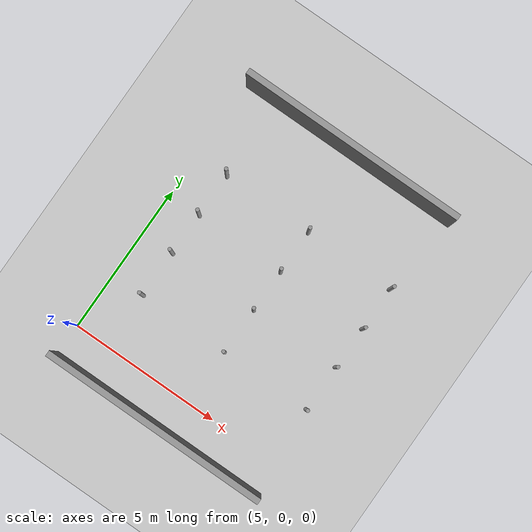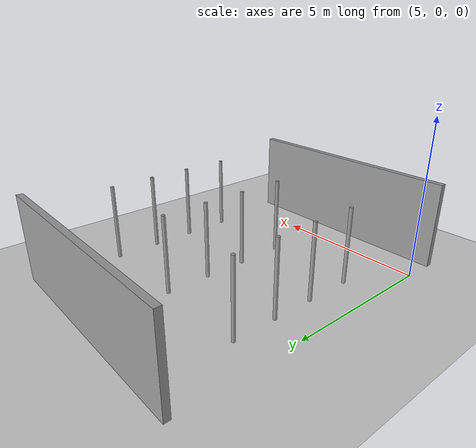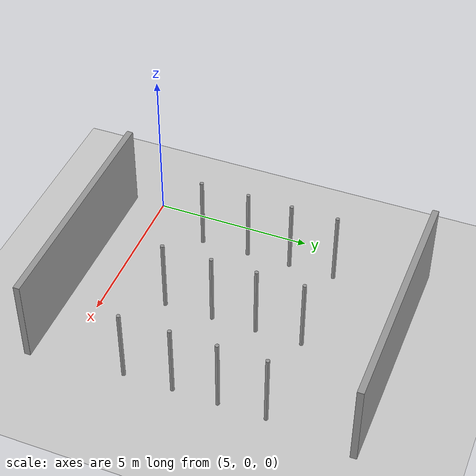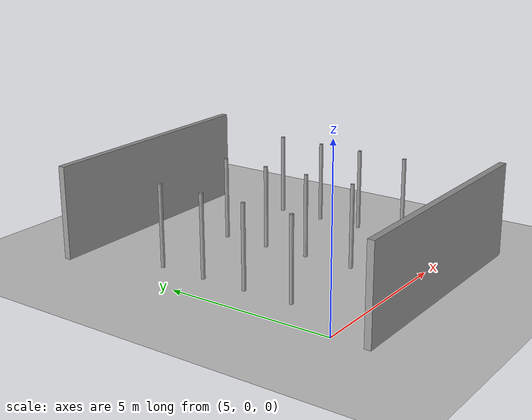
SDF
<sdf version="1.6">
 <world name="default">
  <model name="ground_plane">
   <static>1</static>
   <link name="link">
    <collision name="collision">
     <geometry><plane><normal>0 0 1</normal><size>100 100</size></plane></geometry>
     <surface><friction><ode><mu>100</mu><mu2>50</mu2></ode></friction></surface>
    </collision>
    <visual name="visual">
     <cast_shadows>0</cast_shadows>
     <geometry><plane><normal>0 0 1</normal><size>100 100</size></plane></geometry>
     <material>
      <script><uri>file://media/materials/scripts/gazebo.material</uri><name>Gazebo/Grey</name></script>
     </material>
    </visual>
   </link>
  </model>
  <model name="pole">
   <link name="link_0">
    <inertial>
     <mass>0.0364582</mass>
     <inertia>
      <ixx>0.00312124</ixx>
      <ixy>0</ixy>
      <ixz>0</ixz>
      <iyy>0.00312124</iyy>
      <iyz>0</iyz>
      <izz>0.00016615</izz>
     </inertia>
    </inertial>
    <visual name="visual">
     <geometry><cylinder><radius>0.06</radius><length>2.5</length></cylinder></geometry>
     <material>
      <lighting>1</lighting>
      <script><uri>file://media/materials/scripts/gazebo.material</uri><name>Gazebo/Grey</name></script>
      <ambient>0.3 0.3 0.3 1</ambient>
      <diffuse>0.7 0.7 0.7 1</diffuse>
      <specular>0.01 0.01 0.01 1</specular>
      <emissive>0 0 0 1</emissive>
      <shader type="vertex"><normal_map>__default__</normal_map></shader>
     </material>
    </visual>
    <collision name="collision">
     <geometry><cylinder><radius>0.06</radius><length>2.5</length></cylinder></geometry>
     <surface>
      <friction>
       <ode><mu>1</mu><mu2>1</mu2><fdir1>0 0 0</fdir1><slip1>0</slip1><slip2>0</slip2></ode>
       <torsional>
        <coefficient>1</coefficient>
        <patch_radius>0</patch_radius>
        <surface_radius>0</surface_radius>
        <use_patch_radius>1</use_patch_radius>
        <ode><slip>0</slip></ode>
       </torsional>
      </friction>
      <bounce><restitution_coefficient>0</restitution_coefficient><threshold>1e+06</threshold></bounce>
      <contact>
       <collide_without_contact>0</collide_without_contact>
       <collide_without_contact_bitmask>1</collide_without_contact_bitmask>
       <collide_bitmask>1</collide_bitmask>
       <ode>
        <soft_cfm>0</soft_cfm>
        <soft_erp>0.2</soft_erp>
        <kp>1e+13</kp>
        <kd>1</kd>
        <max_vel>0.01</max_vel>
        <min_depth>0</min_depth>
       </ode>
       <bullet>
        <split_impulse>1</split_impulse>
        <split_impulse_penetration_threshold>-0.01</split_impulse_penetration_threshold>
        <soft_cfm>0</soft_cfm>
        <soft_erp>0.2</soft_erp>
        <kp>1e+13</kp>
        <kd>1</kd>
       </bullet>
      </contact>
     </surface>
    </collision>
   </link>
   <static>0</static>
   <pose>6.10668 1.89955 1.24999 -1e-06 1e-06 -0.061907</pose>
  </model>
  <model name="pole_0">
   <link name="link_0">
    <inertial>
     <mass>0.0364582</mass>
     <inertia>
      <ixx>0.00312124</ixx>
      <ixy>0</ixy>
      <ixz>0</ixz>
      <iyy>0.00312124</iyy>
      <iyz>0</iyz>
      <izz>0.00016615</izz>
     </inertia>
    </inertial>
    <visual name="visual">
     <geometry><cylinder><radius>0.06</radius><length>2.5</length></cylinder></geometry>
     <material>
      <lighting>1</lighting>
      <script><uri>file://media/materials/scripts/gazebo.material</uri><name>Gazebo/Grey</name></script>
      <ambient>0.3 0.3 0.3 1</ambient>
      <diffuse>0.7 0.7 0.7 1</diffuse>
      <specular>0.01 0.01 0.01 1</specular>
      <emissive>0 0 0 1</emissive>
      <shader type="vertex"><normal_map>__default__</normal_map></shader>
     </material>
    </visual>
    <collision name="collision">
     <geometry><cylinder><radius>0.06</radius><length>2.5</length></cylinder></geometry>
     <surface>
      <friction>
       <ode><mu>1</mu><mu2>1</mu2><fdir1>0 0 0</fdir1><slip1>0</slip1><slip2>0</slip2></ode>
       <torsional>
        <coefficient>1</coefficient>
        <patch_radius>0</patch_radius>
        <surface_radius>0</surface_radius>
        <use_patch_radius>1</use_patch_radius>
        <ode><slip>0</slip></ode>
       </torsional>
      </friction>
      <bounce><restitution_coefficient>0</restitution_coefficient><threshold>1e+06</threshold></bounce>
      <contact>
       <collide_without_contact>0</collide_without_contact>
       <collide_without_contact_bitmask>1</collide_without_contact_bitmask>
       <collide_bitmask>1</collide_bitmask>
       <ode>
        <soft_cfm>0</soft_cfm>
        <soft_erp>0.2</soft_erp>
        <kp>1e+13</kp>
        <kd>1</kd>
        <max_vel>0.01</max_vel>
        <min_depth>0</min_depth>
       </ode>
       <bullet>
        <split_impulse>1</split_impulse>
        <split_impulse_penetration_threshold>-0.01</split_impulse_penetration_threshold>
        <soft_cfm>0</soft_cfm>
        <soft_erp>0.2</soft_erp>
        <kp>1e+13</kp>
        <kd>1</kd>
       </bullet>
      </contact>
     </surface>
    </collision>
   </link>
   <static>0</static>
   <pose>6.10668 3.44552 1.24999 -0 -0 -0.031335</pose>
  </model>
  <model name="pole_1">
   <link name="link_0">
    <inertial>
     <mass>0.0364582</mass>
     <inertia>
      <ixx>0.00312124</ixx>
      <ixy>0</ixy>
      <ixz>0</ixz>
      <iyy>0.00312124</iyy>
      <iyz>0</iyz>
      <izz>0.00016615</izz>
     </inertia>
    </inertial>
    <visual name="visual">
     <geometry><cylinder><radius>0.06</radius><length>2.5</length></cylinder></geometry>
     <material>
      <lighting>1</lighting>
      <script><uri>file://media/materials/scripts/gazebo.material</uri><name>Gazebo/Grey</name></script>
      <ambient>0.3 0.3 0.3 1</ambient>
      <diffuse>0.7 0.7 0.7 1</diffuse>
      <specular>0.01 0.01 0.01 1</specular>
      <emissive>0 0 0 1</emissive>
      <shader type="vertex"><normal_map>__default__</normal_map></shader>
     </material>
    </visual>
    <collision name="collision">
     <geometry><cylinder><radius>0.06</radius><length>2.5</length></cylinder></geometry>
     <surface>
      <friction>
       <ode><mu>1</mu><mu2>1</mu2><fdir1>0 0 0</fdir1><slip1>0</slip1><slip2>0</slip2></ode>
       <torsional>
        <coefficient>1</coefficient>
        <patch_radius>0</patch_radius>
        <surface_radius>0</surface_radius>
        <use_patch_radius>1</use_patch_radius>
        <ode><slip>0</slip></ode>
       </torsional>
      </friction>
      <bounce><restitution_coefficient>0</restitution_coefficient><threshold>1e+06</threshold></bounce>
      <contact>
       <collide_without_contact>0</collide_without_contact>
       <collide_without_contact_bitmask>1</collide_without_contact_bitmask>
       <collide_bitmask>1</collide_bitmask>
       <ode>
        <soft_cfm>0</soft_cfm>
        <soft_erp>0.2</soft_erp>
        <kp>1e+13</kp>
        <kd>1</kd>
        <max_vel>0.01</max_vel>
        <min_depth>0</min_depth>
       </ode>
       <bullet>
        <split_impulse>1</split_impulse>
        <split_impulse_penetration_threshold>-0.01</split_impulse_penetration_threshold>
        <soft_cfm>0</soft_cfm>
        <soft_erp>0.2</soft_erp>
        <kp>1e+13</kp>
        <kd>1</kd>
       </bullet>
      </contact>
     </surface>
    </collision>
   </link>
   <static>0</static>
   <pose>6.10672 4.85459 1.25 0 -1e-06 -0.034421</pose>
  </model>
  <model name="pole_2">
   <link name="link_0">
    <inertial>
     <mass>0.0364582</mass>
     <inertia>
      <ixx>0.00312124</ixx>
      <ixy>0</ixy>
      <ixz>0</ixz>
      <iyy>0.00312124</iyy>
      <iyz>0</iyz>
      <izz>0.00016615</izz>
     </inertia>
    </inertial>
    <visual name="visual">
     <geometry><cylinder><radius>0.06</radius><length>2.5</length></cylinder></geometry>
     <material>
      <lighting>1</lighting>
      <script><uri>file://media/materials/scripts/gazebo.material</uri><name>Gazebo/Grey</name></script>
      <ambient>0.3 0.3 0.3 1</ambient>
      <diffuse>0.7 0.7 0.7 1</diffuse>
      <specular>0.01 0.01 0.01 1</specular>
      <emissive>0 0 0 1</emissive>
      <shader type="vertex"><normal_map>__default__</normal_map></shader>
     </material>
    </visual>
    <collision name="collision">
     <geometry><cylinder><radius>0.06</radius><length>2.5</length></cylinder></geometry>
     <surface>
      <friction>
       <ode><mu>1</mu><mu2>1</mu2><fdir1>0 0 0</fdir1><slip1>0</slip1><slip2>0</slip2></ode>
       <torsional>
        <coefficient>1</coefficient>
        <patch_radius>0</patch_radius>
        <surface_radius>0</surface_radius>
        <use_patch_radius>1</use_patch_radius>
        <ode><slip>0</slip></ode>
       </torsional>
      </friction>
      <bounce><restitution_coefficient>0</restitution_coefficient><threshold>1e+06</threshold></bounce>
      <contact>
       <collide_without_contact>0</collide_without_contact>
       <collide_without_contact_bitmask>1</collide_without_contact_bitmask>
       <collide_bitmask>1</collide_bitmask>
       <ode>
        <soft_cfm>0</soft_cfm>
        <soft_erp>0.2</soft_erp>
        <kp>1e+13</kp>
        <kd>1</kd>
        <max_vel>0.01</max_vel>
        <min_depth>0</min_depth>
       </ode>
       <bullet>
        <split_impulse>1</split_impulse>
        <split_impulse_penetration_threshold>-0.01</split_impulse_penetration_threshold>
        <soft_cfm>0</soft_cfm>
        <soft_erp>0.2</soft_erp>
        <kp>1e+13</kp>
        <kd>1</kd>
       </bullet>
      </contact>
     </surface>
    </collision>
   </link>
   <static>0</static>
   <pose>6.10634 6.31752 1.25 0 1e-06 -0.040788</pose>
  </model>
  <model name="pole_3">
   <link name="link_0">
    <inertial>
     <mass>0.0364582</mass>
     <inertia>
      <ixx>0.00312124</ixx>
      <ixy>0</ixy>
      <ixz>0</ixz>
      <iyy>0.00312124</iyy>
      <iyz>0</iyz>
      <izz>0.00016615</izz>
     </inertia>
    </inertial>
    <visual name="visual">
     <geometry><cylinder><radius>0.06</radius><length>2.5</length></cylinder></geometry>
     <material>
      <lighting>1</lighting>
      <script><uri>file://media/materials/scripts/gazebo.material</uri><name>Gazebo/Grey</name></script>
      <ambient>0.3 0.3 0.3 1</ambient>
      <diffuse>0.7 0.7 0.7 1</diffuse>
      <specular>0.01 0.01 0.01 1</specular>
      <emissive>0 0 0 1</emissive>
      <shader type="vertex"><normal_map>__default__</normal_map></shader>
     </material>
    </visual>
    <collision name="collision">
     <geometry><cylinder><radius>0.06</radius><length>2.5</length></cylinder></geometry>
     <surface>
      <friction>
       <ode><mu>1</mu><mu2>1</mu2><fdir1>0 0 0</fdir1><slip1>0</slip1><slip2>0</slip2></ode>
       <torsional>
        <coefficient>1</coefficient>
        <patch_radius>0</patch_radius>
        <surface_radius>0</surface_radius>
        <use_patch_radius>1</use_patch_radius>
        <ode><slip>0</slip></ode>
       </torsional>
      </friction>
      <bounce><restitution_coefficient>0</restitution_coefficient><threshold>1e+06</threshold></bounce>
      <contact>
       <collide_without_contact>0</collide_without_contact>
       <collide_without_contact_bitmask>1</collide_without_contact_bitmask>
       <collide_bitmask>1</collide_bitmask>
       <ode>
        <soft_cfm>0</soft_cfm>
        <soft_erp>0.2</soft_erp>
        <kp>1e+13</kp>
        <kd>1</kd>
        <max_vel>0.01</max_vel>
        <min_depth>0</min_depth>
       </ode>
       <bullet>
        <split_impulse>1</split_impulse>
        <split_impulse_penetration_threshold>-0.01</split_impulse_penetration_threshold>
        <soft_cfm>0</soft_cfm>
        <soft_erp>0.2</soft_erp>
        <kp>1e+13</kp>
        <kd>1</kd>
       </bullet>
      </contact>
     </surface>
    </collision>
   </link>
   <static>0</static>
   <pose>12.1068 1.89951 1.25 -1e-06 1e-06 -0.035828</pose>
  </model>
  <model name="pole_4">
   <link name="link_0">
    <inertial>
     <mass>0.0364582</mass>
     <inertia>
      <ixx>0.00312124</ixx>
      <ixy>0</ixy>
      <ixz>0</ixz>
      <iyy>0.00312124</iyy>
      <iyz>0</iyz>
      <izz>0.00016615</izz>
     </inertia>
    </inertial>
    <visual name="visual">
     <geometry><cylinder><radius>0.06</radius><length>2.5</length></cylinder></geometry>
     <material>
      <lighting>1</lighting>
      <script><uri>file://media/materials/scripts/gazebo.material</uri><name>Gazebo/Grey</name></script>
      <ambient>0.3 0.3 0.3 1</ambient>
      <diffuse>0.7 0.7 0.7 1</diffuse>
      <specular>0.01 0.01 0.01 1</specular>
      <emissive>0 0 0 1</emissive>
      <shader type="vertex"><normal_map>__default__</normal_map></shader>
     </material>
    </visual>
    <collision name="collision">
     <geometry><cylinder><radius>0.06</radius><length>2.5</length></cylinder></geometry>
     <surface>
      <friction>
       <ode><mu>1</mu><mu2>1</mu2><fdir1>0 0 0</fdir1><slip1>0</slip1><slip2>0</slip2></ode>
       <torsional>
        <coefficient>1</coefficient>
        <patch_radius>0</patch_radius>
        <surface_radius>0</surface_radius>
        <use_patch_radius>1</use_patch_radius>
        <ode><slip>0</slip></ode>
       </torsional>
      </friction>
      <bounce><restitution_coefficient>0</restitution_coefficient><threshold>1e+06</threshold></bounce>
      <contact>
       <collide_without_contact>0</collide_without_contact>
       <collide_without_contact_bitmask>1</collide_without_contact_bitmask>
       <collide_bitmask>1</collide_bitmask>
       <ode>
        <soft_cfm>0</soft_cfm>
        <soft_erp>0.2</soft_erp>
        <kp>1e+13</kp>
        <kd>1</kd>
        <max_vel>0.01</max_vel>
        <min_depth>0</min_depth>
       </ode>
       <bullet>
        <split_impulse>1</split_impulse>
        <split_impulse_penetration_threshold>-0.01</split_impulse_penetration_threshold>
        <soft_cfm>0</soft_cfm>
        <soft_erp>0.2</soft_erp>
        <kp>1e+13</kp>
        <kd>1</kd>
       </bullet>
      </contact>
     </surface>
    </collision>
   </link>
   <static>0</static>
   <pose>9.10668 3.44567 1.25 -1e-06 1e-06 -0.031158</pose>
  </model>
  <model name="pole_5">
   <link name="link_0">
    <inertial>
     <mass>0.0364582</mass>
     <inertia>
      <ixx>0.00312124</ixx>
      <ixy>0</ixy>
      <ixz>0</ixz>
      <iyy>0.00312124</iyy>
      <iyz>0</iyz>
      <izz>0.00016615</izz>
     </inertia>
    </inertial>
    <visual name="visual">
     <geometry><cylinder><radius>0.06</radius><length>2.5</length></cylinder></geometry>
     <material>
      <lighting>1</lighting>
      <script><uri>file://media/materials/scripts/gazebo.material</uri><name>Gazebo/Grey</name></script>
      <ambient>0.3 0.3 0.3 1</ambient>
      <diffuse>0.7 0.7 0.7 1</diffuse>
      <specular>0.01 0.01 0.01 1</specular>
      <emissive>0 0 0 1</emissive>
      <shader type="vertex"><normal_map>__default__</normal_map></shader>
     </material>
    </visual>
    <collision name="collision">
     <geometry><cylinder><radius>0.06</radius><length>2.5</length></cylinder></geometry>
     <surface>
      <friction>
       <ode><mu>1</mu><mu2>1</mu2><fdir1>0 0 0</fdir1><slip1>0</slip1><slip2>0</slip2></ode>
       <torsional>
        <coefficient>1</coefficient>
        <patch_radius>0</patch_radius>
        <surface_radius>0</surface_radius>
        <use_patch_radius>1</use_patch_radius>
        <ode><slip>0</slip></ode>
       </torsional>
      </friction>
      <bounce><restitution_coefficient>0</restitution_coefficient><threshold>1e+06</threshold></bounce>
      <contact>
       <collide_without_contact>0</collide_without_contact>
       <collide_without_contact_bitmask>1</collide_without_contact_bitmask>
       <collide_bitmask>1</collide_bitmask>
       <ode>
        <soft_cfm>0</soft_cfm>
        <soft_erp>0.2</soft_erp>
        <kp>1e+13</kp>
        <kd>1</kd>
        <max_vel>0.01</max_vel>
        <min_depth>0</min_depth>
       </ode>
       <bullet>
        <split_impulse>1</split_impulse>
        <split_impulse_penetration_threshold>-0.01</split_impulse_penetration_threshold>
        <soft_cfm>0</soft_cfm>
        <soft_erp>0.2</soft_erp>
        <kp>1e+13</kp>
        <kd>1</kd>
       </bullet>
      </contact>
     </surface>
    </collision>
   </link>
   <static>0</static>
   <pose>9.10675 4.85471 1.24999 0 1e-06 -0.032012</pose>
  </model>
  <model name="pole_6">
   <link name="link_0">
    <inertial>
     <mass>0.0364582</mass>
     <inertia>
      <ixx>0.00312124</ixx>
      <ixy>0</ixy>
      <ixz>0</ixz>
      <iyy>0.00312124</iyy>
      <iyz>0</iyz>
      <izz>0.00016615</izz>
     </inertia>
    </inertial>
    <visual name="visual">
     <geometry><cylinder><radius>0.06</radius><length>2.5</length></cylinder></geometry>
     <material>
      <lighting>1</lighting>
      <script><uri>file://media/materials/scripts/gazebo.material</uri><name>Gazebo/Grey</name></script>
      <ambient>0.3 0.3 0.3 1</ambient>
      <diffuse>0.7 0.7 0.7 1</diffuse>
      <specular>0.01 0.01 0.01 1</specular>
      <emissive>0 0 0 1</emissive>
      <shader type="vertex"><normal_map>__default__</normal_map></shader>
     </material>
    </visual>
    <collision name="collision">
     <geometry><cylinder><radius>0.06</radius><length>2.5</length></cylinder></geometry>
     <surface>
      <friction>
       <ode><mu>1</mu><mu2>1</mu2><fdir1>0 0 0</fdir1><slip1>0</slip1><slip2>0</slip2></ode>
       <torsional>
        <coefficient>1</coefficient>
        <patch_radius>0</patch_radius>
        <surface_radius>0</surface_radius>
        <use_patch_radius>1</use_patch_radius>
        <ode><slip>0</slip></ode>
       </torsional>
      </friction>
      <bounce><restitution_coefficient>0</restitution_coefficient><threshold>1e+06</threshold></bounce>
      <contact>
       <collide_without_contact>0</collide_without_contact>
       <collide_without_contact_bitmask>1</collide_without_contact_bitmask>
       <collide_bitmask>1</collide_bitmask>
       <ode>
        <soft_cfm>0</soft_cfm>
        <soft_erp>0.2</soft_erp>
        <kp>1e+13</kp>
        <kd>1</kd>
        <max_vel>0.01</max_vel>
        <min_depth>0</min_depth>
       </ode>
       <bullet>
        <split_impulse>1</split_impulse>
        <split_impulse_penetration_threshold>-0.01</split_impulse_penetration_threshold>
        <soft_cfm>0</soft_cfm>
        <soft_erp>0.2</soft_erp>
        <kp>1e+13</kp>
        <kd>1</kd>
       </bullet>
      </contact>
     </surface>
    </collision>
   </link>
   <static>0</static>
   <pose>9.1067 6.31756 1.25 2e-06 1e-06 -0.053815</pose>
  </model>
  <model name="pole_7">
   <link name="link_0">
    <inertial>
     <mass>0.0364582</mass>
     <inertia>
      <ixx>0.00312124</ixx>
      <ixy>0</ixy>
      <ixz>0</ixz>
      <iyy>0.00312124</iyy>
      <iyz>0</iyz>
      <izz>0.00016615</izz>
     </inertia>
    </inertial>
    <visual name="visual">
     <geometry><cylinder><radius>0.06</radius><length>2.5</length></cylinder></geometry>
     <material>
      <lighting>1</lighting>
      <script><uri>file://media/materials/scripts/gazebo.material</uri><name>Gazebo/Grey</name></script>
      <ambient>0.3 0.3 0.3 1</ambient>
      <diffuse>0.7 0.7 0.7 1</diffuse>
      <specular>0.01 0.01 0.01 1</specular>
      <emissive>0 0 0 1</emissive>
      <shader type="vertex"><normal_map>__default__</normal_map></shader>
     </material>
    </visual>
    <collision name="collision">
     <geometry><cylinder><radius>0.06</radius><length>2.5</length></cylinder></geometry>
     <surface>
      <friction>
       <ode><mu>1</mu><mu2>1</mu2><fdir1>0 0 0</fdir1><slip1>0</slip1><slip2>0</slip2></ode>
       <torsional>
        <coefficient>1</coefficient>
        <patch_radius>0</patch_radius>
        <surface_radius>0</surface_radius>
        <use_patch_radius>1</use_patch_radius>
        <ode><slip>0</slip></ode>
       </torsional>
      </friction>
      <bounce><restitution_coefficient>0</restitution_coefficient><threshold>1e+06</threshold></bounce>
      <contact>
       <collide_without_contact>0</collide_without_contact>
       <collide_without_contact_bitmask>1</collide_without_contact_bitmask>
       <collide_bitmask>1</collide_bitmask>
       <ode>
        <soft_cfm>0</soft_cfm>
        <soft_erp>0.2</soft_erp>
        <kp>1e+13</kp>
        <kd>1</kd>
        <max_vel>0.01</max_vel>
        <min_depth>0</min_depth>
       </ode>
       <bullet>
        <split_impulse>1</split_impulse>
        <split_impulse_penetration_threshold>-0.01</split_impulse_penetration_threshold>
        <soft_cfm>0</soft_cfm>
        <soft_erp>0.2</soft_erp>
        <kp>1e+13</kp>
        <kd>1</kd>
       </bullet>
      </contact>
     </surface>
    </collision>
   </link>
   <static>0</static>
   <pose>9.10668 1.89965 1.25 -1e-06 -0 -0.026468</pose>
  </model>
  <model name="pole_8">
   <link name="link_0">
    <inertial>
     <mass>0.0364582</mass>
     <inertia>
      <ixx>0.00312124</ixx>
      <ixy>0</ixy>
      <ixz>0</ixz>
      <iyy>0.00312124</iyy>
      <iyz>0</iyz>
      <izz>0.00016615</izz>
     </inertia>
    </inertial>
    <visual name="visual">
     <geometry><cylinder><radius>0.06</radius><length>2.5</length></cylinder></geometry>
     <material>
      <lighting>1</lighting>
      <script><uri>file://media/materials/scripts/gazebo.material</uri><name>Gazebo/Grey</name></script>
      <ambient>0.3 0.3 0.3 1</ambient>
      <diffuse>0.7 0.7 0.7 1</diffuse>
      <specular>0.01 0.01 0.01 1</specular>
      <emissive>0 0 0 1</emissive>
      <shader type="vertex"><normal_map>__default__</normal_map></shader>
     </material>
    </visual>
    <collision name="collision">
     <geometry><cylinder><radius>0.06</radius><length>2.5</length></cylinder></geometry>
     <surface>
      <friction>
       <ode><mu>1</mu><mu2>1</mu2><fdir1>0 0 0</fdir1><slip1>0</slip1><slip2>0</slip2></ode>
       <torsional>
        <coefficient>1</coefficient>
        <patch_radius>0</patch_radius>
        <surface_radius>0</surface_radius>
        <use_patch_radius>1</use_patch_radius>
        <ode><slip>0</slip></ode>
       </torsional>
      </friction>
      <bounce><restitution_coefficient>0</restitution_coefficient><threshold>1e+06</threshold></bounce>
      <contact>
       <collide_without_contact>0</collide_without_contact>
       <collide_without_contact_bitmask>1</collide_without_contact_bitmask>
       <collide_bitmask>1</collide_bitmask>
       <ode>
        <soft_cfm>0</soft_cfm>
        <soft_erp>0.2</soft_erp>
        <kp>1e+13</kp>
        <kd>1</kd>
        <max_vel>0.01</max_vel>
        <min_depth>0</min_depth>
       </ode>
       <bullet>
        <split_impulse>1</split_impulse>
        <split_impulse_penetration_threshold>-0.01</split_impulse_penetration_threshold>
        <soft_cfm>0</soft_cfm>
        <soft_erp>0.2</soft_erp>
        <kp>1e+13</kp>
        <kd>1</kd>
       </bullet>
      </contact>
     </surface>
    </collision>
   </link>
   <static>0</static>
   <pose>12.1068 3.44562 1.25 0 1e-06 -0.028831</pose>
  </model>
  <model name="pole_9">
   <link name="link_0">
    <inertial>
     <mass>0.0364582</mass>
     <inertia>
      <ixx>0.00312124</ixx>
      <ixy>0</ixy>
      <ixz>0</ixz>
      <iyy>0.00312124</iyy>
      <iyz>0</iyz>
      <izz>0.00016615</izz>
     </inertia>
    </inertial>
    <visual name="visual">
     <geometry><cylinder><radius>0.06</radius><length>2.5</length></cylinder></geometry>
     <material>
      <lighting>1</lighting>
      <script><uri>file://media/materials/scripts/gazebo.material</uri><name>Gazebo/Grey</name></script>
      <ambient>0.3 0.3 0.3 1</ambient>
      <diffuse>0.7 0.7 0.7 1</diffuse>
      <specular>0.01 0.01 0.01 1</specular>
      <emissive>0 0 0 1</emissive>
      <shader type="vertex"><normal_map>__default__</normal_map></shader>
     </material>
    </visual>
    <collision name="collision">
     <geometry><cylinder><radius>0.06</radius><length>2.5</length></cylinder></geometry>
     <surface>
      <friction>
       <ode><mu>1</mu><mu2>1</mu2><fdir1>0 0 0</fdir1><slip1>0</slip1><slip2>0</slip2></ode>
       <torsional>
        <coefficient>1</coefficient>
        <patch_radius>0</patch_radius>
        <surface_radius>0</surface_radius>
        <use_patch_radius>1</use_patch_radius>
        <ode><slip>0</slip></ode>
       </torsional>
      </friction>
      <bounce><restitution_coefficient>0</restitution_coefficient><threshold>1e+06</threshold></bounce>
      <contact>
       <collide_without_contact>0</collide_without_contact>
       <collide_without_contact_bitmask>1</collide_without_contact_bitmask>
       <collide_bitmask>1</collide_bitmask>
       <ode>
        <soft_cfm>0</soft_cfm>
        <soft_erp>0.2</soft_erp>
        <kp>1e+13</kp>
        <kd>1</kd>
        <max_vel>0.01</max_vel>
        <min_depth>0</min_depth>
       </ode>
       <bullet>
        <split_impulse>1</split_impulse>
        <split_impulse_penetration_threshold>-0.01</split_impulse_penetration_threshold>
        <soft_cfm>0</soft_cfm>
        <soft_erp>0.2</soft_erp>
        <kp>1e+13</kp>
        <kd>1</kd>
       </bullet>
      </contact>
     </surface>
    </collision>
   </link>
   <static>0</static>
   <pose>12.1067 4.85454 1.24999 1e-06 -1e-06 -0.031577</pose>
  </model>
  <model name="pole_10">
   <link name="link_0">
    <inertial>
     <mass>0.0364582</mass>
     <inertia>
      <ixx>0.00312124</ixx>
      <ixy>0</ixy>
      <ixz>0</ixz>
      <iyy>0.00312124</iyy>
      <iyz>0</iyz>
      <izz>0.00016615</izz>
     </inertia>
    </inertial>
    <visual name="visual">
     <geometry><cylinder><radius>0.06</radius><length>2.5</length></cylinder></geometry>
     <material>
      <lighting>1</lighting>
      <script><uri>file://media/materials/scripts/gazebo.material</uri><name>Gazebo/Grey</name></script>
      <ambient>0.3 0.3 0.3 1</ambient>
      <diffuse>0.7 0.7 0.7 1</diffuse>
      <specular>0.01 0.01 0.01 1</specular>
      <emissive>0 0 0 1</emissive>
      <shader type="vertex"><normal_map>__default__</normal_map></shader>
     </material>
    </visual>
    <collision name="collision">
     <geometry><cylinder><radius>0.06</radius><length>2.5</length></cylinder></geometry>
     <surface>
      <friction>
       <ode><mu>1</mu><mu2>1</mu2><fdir1>0 0 0</fdir1><slip1>0</slip1><slip2>0</slip2></ode>
       <torsional>
        <coefficient>1</coefficient>
        <patch_radius>0</patch_radius>
        <surface_radius>0</surface_radius>
        <use_patch_radius>1</use_patch_radius>
        <ode><slip>0</slip></ode>
       </torsional>
      </friction>
      <bounce><restitution_coefficient>0</restitution_coefficient><threshold>1e+06</threshold></bounce>
      <contact>
       <collide_without_contact>0</collide_without_contact>
       <collide_without_contact_bitmask>1</collide_without_contact_bitmask>
       <collide_bitmask>1</collide_bitmask>
       <ode>
        <soft_cfm>0</soft_cfm>
        <soft_erp>0.2</soft_erp>
        <kp>1e+13</kp>
        <kd>1</kd>
        <max_vel>0.01</max_vel>
        <min_depth>0</min_depth>
       </ode>
       <bullet>
        <split_impulse>1</split_impulse>
        <split_impulse_penetration_threshold>-0.01</split_impulse_penetration_threshold>
        <soft_cfm>0</soft_cfm>
        <soft_erp>0.2</soft_erp>
        <kp>1e+13</kp>
        <kd>1</kd>
       </bullet>
      </contact>
     </surface>
    </collision>
   </link>
   <static>0</static>
   <pose>12.1067 6.31748 1.25 -1e-06 -1e-06 -0.029573</pose>
  </model>
  <model name="grey_wall">
   <static>1</static>
   <link name="link">
    <pose>0 0 1.4 0 -0 0</pose>
    <collision name="collision"><geometry><box><size>7.5 0.2 2.8</size></box></geometry></collision>
    <visual name="visual">
     <cast_shadows>0</cast_shadows>
     <geometry><box><size>7.5 0.2 2.8</size></box></geometry>
     <material>
      <script>
       <uri>model://grey_wall/materials/scripts</uri>
       <uri>model://grey_wall/materials/textures</uri>
       <name>vrc/grey_wall</name>
      </script>
     </material>
    </visual>
   </link>
   <pose>8.74485 9.00827 0 0 -0 0</pose>
  </model>
  <model name="grey_wall_clone_clone">
   <static>1</static>
   <link name="link">
    <pose>0 0 1.4 0 -0 0</pose>
    <collision name="collision"><geometry><box><size>7.5 0.2 2.8</size></box></geometry></collision>
    <visual name="visual">
     <cast_shadows>0</cast_shadows>
     <geometry><box><size>7.5 0.2 2.8</size></box></geometry>
     <material>
      <script>
       <uri>model://grey_wall/materials/scripts</uri>
       <uri>model://grey_wall/materials/textures</uri>
       <name>vrc/grey_wall</name>
      </script>
     </material>
    </visual>
   </link>
   <pose>8.70863 -1.06822 0 0 -0 0</pose>
  </model>
 </world>
</sdf>
